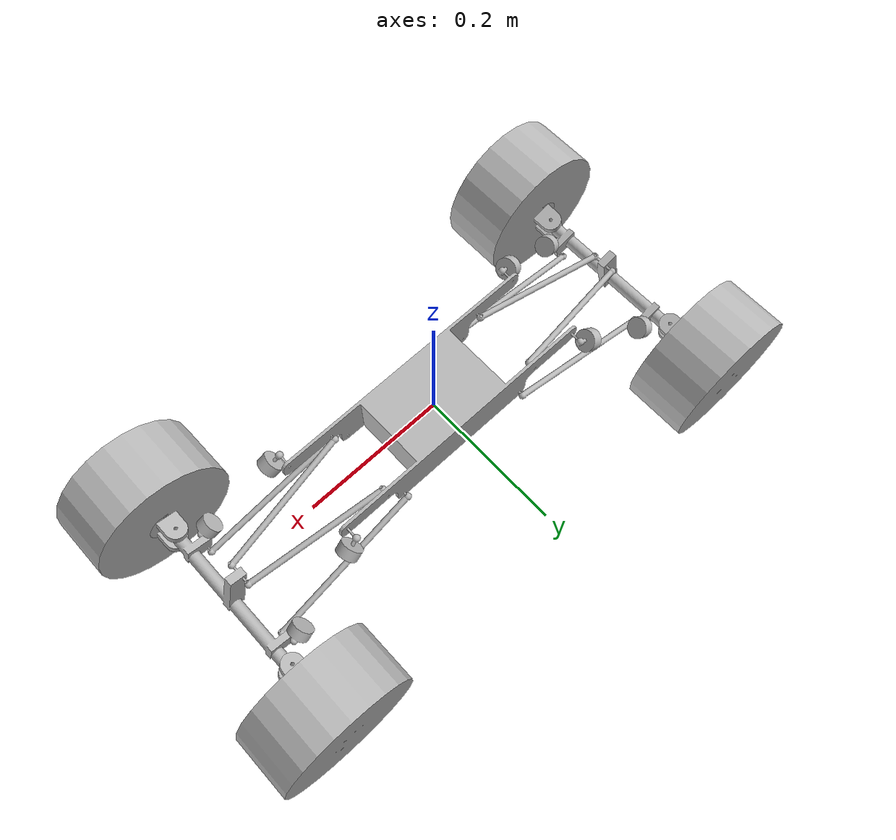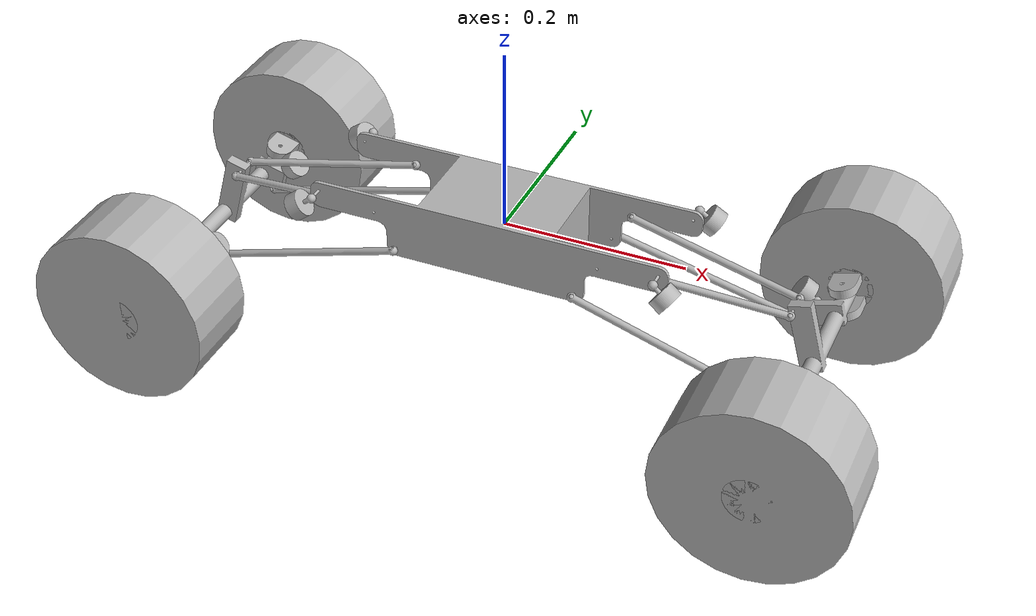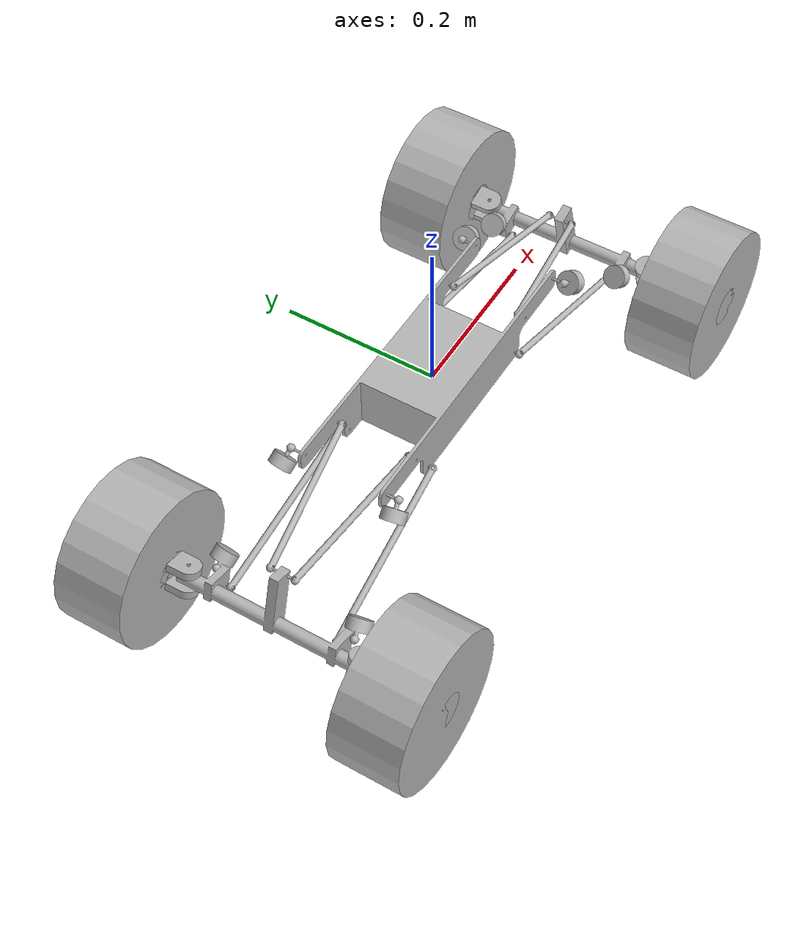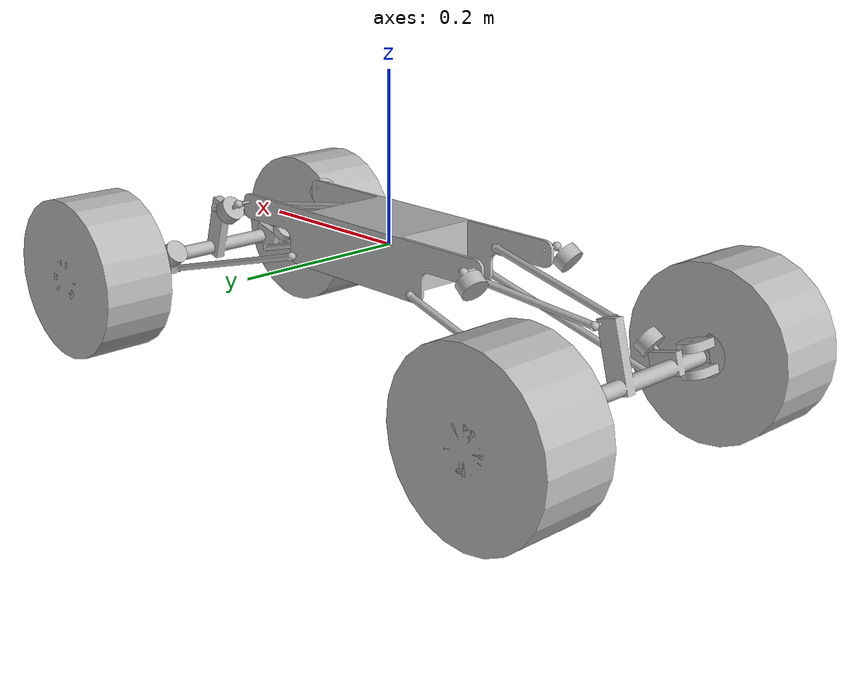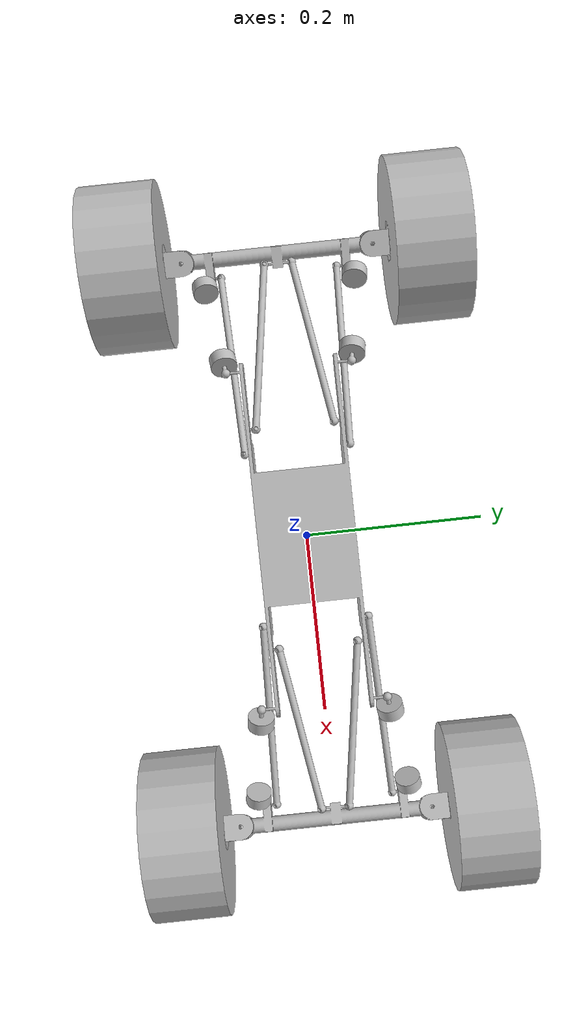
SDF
<?xml version="1.0" ?>
<sdf version='1.6'>
  <world name='sim_world'>
    <model name='clifford'>
      <link name='body'>
        <pose frame=''>0 0 0 0 -0 0</pose>
        <inertial>
          <pose frame=''>0 -0 0 0 -0 0</pose>
          <mass>1.20456</mass>
          <inertia>
            <ixx>0.00136339</ixx>
            <ixy>-1.92982e-16</ixy>
            <ixz>-5.63833e-15</ixz>
            <iyy>0.0039261</iyy>
            <iyz>3.35564e-17</iyz>
            <izz>0.00436726</izz>
          </inertia>
        </inertial>
        <visual name='body_visual'>
          <pose frame=''>0 0 0 0 -0 0</pose>
          <geometry>
            <mesh>
              <scale>1 1 1</scale>
              <uri>model://meshes/body.STL</uri>
            </mesh>
          </geometry>
        </visual>
        <collision name='body_visual'>
          <pose frame=''>0 0 0 0 -0 0</pose>
          <geometry>
            <mesh>
              <scale>1 1 1</scale>
              <uri>model://meshes/body.STL</uri>
            </mesh>
          </geometry>
        </collision>
      </link>
      <link name='bro'>
        <pose frame=''>-0.101 -0.0615 -0.024 1.28235 0.269455 -3.09986</pose>
        <inertial>
          <pose frame=''>0.115 -0 -0 0 -0 0</pose>
          <mass>0.0117925</mass>
          <inertia>
            <ixx>9.65368e-08</ixx>
            <ixy>4.10647e-12</ixy>
            <ixz>1.05145e-19</ixz>
            <iyy>5.42742e-05</iyy>
            <iyz>2.71051e-20</iyz>
            <izz>5.42722e-05</izz>
          </inertia>
        </inertial>
        <visual name='bro_visual'>
          <pose frame=''>0 0 0 0 -0 0</pose>
          <geometry>
            <mesh>
              <scale>1 1 1</scale>
              <uri>model://meshes/linkageOut.STL</uri>
            </mesh>
          </geometry>
        </visual>
      </link>
      <link name='backAxle'>
        <pose frame=''>-0.322508 -0.07075 -0.085227 0.267288 -0 1.5708</pose>
        <inertial>
          <pose frame=''>0.07075 0.019868 0.013586 0 -0 0</pose>
          <mass>0.0969889</mass>
          <inertia>
            <ixx>3.59997e-05</ixx>
            <ixy>3.0828e-11</ixy>
            <ixz>-2.58754e-11</ixz>
            <iyy>0.00045052</iyy>
            <iyz>9.38007e-07</iyz>
            <izz>0.00042565</izz>
          </inertia>
        </inertial>
        <visual name='backAxle_visual'>
          <pose frame=''>0 0 0 0 -0 0</pose>
          <geometry>
            <mesh>
              <scale>1 1 1</scale>
              <uri>model://meshes/axleRear.STL</uri>
            </mesh>
          </geometry>
        </visual>
      </link>
      <link name='bli'>
        <pose frame=''>-0.315871 0.016 -0.013949 -0.604825 -0.143825 0.148221</pose>
        <inertial>
          <pose frame=''>0.0975 0 -0 0 -0 0</pose>
          <mass>0.0200332</mass>
          <inertia>
            <ixx>8.24621e-08</ixx>
            <ixy>2.3168e-12</ixy>
            <ixz>1.29699e-19</ixz>
            <iyy>3.34708e-05</iyy>
            <iyz>-3.30343e-20</iyz>
            <izz>3.34688e-05</izz>
          </inertia>
        </inertial>
        <visual name='bli_visual'>
          <pose frame=''>0 0 0 0 -0 0</pose>
          <geometry>
            <mesh>
              <scale>1 1 1</scale>
              <uri>model://meshes/linkageIn.STL</uri>
            </mesh>
          </geometry>
        </visual>
      </link>
      <link name='blo'>
        <pose frame=''>-0.322508 0.07075 -0.085227 2.55732 -0.269455 -0.041735</pose>
        <inertial>
          <pose frame=''>0.115 0 0 0 -0 0</pose>
          <mass>0.0117925</mass>
          <inertia>
            <ixx>9.65368e-08</ixx>
            <ixy>-4.10647e-12</ixy>
            <ixz>2.98276e-19</ixz>
            <iyy>5.42742e-05</iyy>
            <iyz>-6.94567e-20</iyz>
            <izz>5.42722e-05</izz>
          </inertia>
        </inertial>
        <visual name='blo_visual'>
          <pose frame=''>0 0 0 0 -0 0</pose>
          <geometry>
            <mesh>
              <scale>1 1 1</scale>
              <uri>model://meshes/linkageOut.STL</uri>
            </mesh>
          </geometry>
        </visual>
      </link>
      <link name='blslower'>
        <pose frame=''>-0.318186 0.092 -0.068785 -0.568218 -0.618473 -0.161762</pose>
        <inertial>
          <pose frame=''>0.016589 -0 0 0 -0 0</pose>
          <mass>0.0112311</mass>
          <inertia>
            <ixx>1.19839e-06</ixx>
            <ixy>-7.365e-14</ixy>
            <ixz>-1.39475e-14</ixz>
            <iyy>9.62721e-07</iyy>
            <iyz>1.3652e-15</iyz>
            <izz>9.62722e-07</izz>
          </inertia>
        </inertial>
        <visual name='blslower_visual'>
          <pose frame=''>0 0 0 0 -0 0</pose>
          <geometry>
            <mesh>
              <scale>1 1 1</scale>
              <uri>model://meshes/springPart.STL</uri>
            </mesh>
          </geometry>
        </visual>
      </link>
      <link name='blsupper'>
        <pose frame=''>-0.1895 0.071 0.024 2.41118 0.618473 2.97983</pose>
        <inertial>
          <pose frame=''>0.016589 -0 0 0 -0 0</pose>
          <mass>0.0112311</mass>
          <inertia>
            <ixx>1.19839e-06</ixx>
            <ixy>-4.34583e-14</ixy>
            <ixz>-1.88149e-14</ixz>
            <iyy>9.62721e-07</iyy>
            <iyz>1.08668e-15</iyz>
            <izz>9.62722e-07</izz>
          </inertia>
        </inertial>
        <visual name='blsupper_visual'>
          <pose frame=''>0 0 0 0 -0 0</pose>
          <geometry>
            <mesh>
              <scale>1 1 1</scale>
              <uri>model://meshes/springPart.STL</uri>
            </mesh>
          </geometry>
        </visual>
      </link>
      <link name='blwheel'>
        <pose frame=''>-0.342683 0.115 -0.074 -2.8743 -0 1.5708</pose>
        <inertial>
          <pose frame=''>0.00750009171 0 0 0 -0 0</pose>
          <mass>0.19539</mass>
          <inertia>
            <ixx>6.03364e-05</ixx>
            <ixy>3.16416e-20</ixy>
            <ixz>-2.02141e-21</ixz>
            <iyy>0.000215224</iyy>
            <iyz>6.77626e-21</iyz>
            <izz>0.000212705</izz>
          </inertia>
        </inertial>
        <visual name='blwheel_visual'>
          <pose frame=''>0 0 0 0 -0 0</pose>
          <geometry>
            <mesh>
              <scale>1 1 1</scale>
              <uri>model://meshes/wheelHub.STL</uri>
            </mesh>
          </geometry>
        </visual>
      </link>
      <link name='bri'>
        <pose frame=''>-0.315871 -0.016 -0.013949 1.44194 -0.143825 -0.148221</pose>
        <inertial>
          <pose frame=''>0.0975 0 0 0 -0 0</pose>
          <mass>0.0200332</mass>
          <inertia>
            <ixx>8.24621e-08</ixx>
            <ixy>-2.3168e-12</ixy>
            <ixz>-2.12659e-19</ixz>
            <iyy>3.34708e-05</iyy>
            <iyz>5.97158e-20</iyz>
            <izz>3.34688e-05</izz>
          </inertia>
        </inertial>
        <visual name='bri_visual'>
          <pose frame=''>0 0 0 0 -0 0</pose>
          <geometry>
            <mesh>
              <scale>1 1 1</scale>
              <uri>model://meshes/linkageIn.STL</uri>
            </mesh>
          </geometry>
        </visual>
      </link>
      <link name='brslower'>
        <pose frame=''>-0.318186 -0.092 -0.068785 -0.210766 -0.618473 0.161762</pose>
        <inertial>
          <pose frame=''>0.016589 0 0 0 -0 0</pose>
          <mass>0.0112311</mass>
          <inertia>
            <ixx>1.19839e-06</ixx>
            <ixy>6.27133e-15</ixy>
            <ixz>-2.09143e-14</ixz>
            <iyy>9.62721e-07</iyy>
            <iyz>-1.74313e-16</iyz>
            <izz>9.62722e-07</izz>
          </inertia>
        </inertial>
        <visual name='brslower_visual'>
          <pose frame=''>0 0 0 0 -0 0</pose>
          <geometry>
            <mesh>
              <scale>1 1 1</scale>
              <uri>model://meshes/springPart.STL</uri>
            </mesh>
          </geometry>
        </visual>
      </link>
      <link name='brsupper'>
        <pose frame=''>-0.1895 -0.071 0.024 2.05373 0.618473 -2.97983</pose>
        <inertial>
          <pose frame=''>0.016589 -0 0 0 -0 0</pose>
          <mass>0.0112311</mass>
          <inertia>
            <ixx>1.19839e-06</ixx>
            <ixy>-9.65399e-14</ixy>
            <ixz>-4.33935e-15</ixz>
            <iyy>9.62721e-07</iyy>
            <iyz>5.56748e-16</iyz>
            <izz>9.62722e-07</izz>
          </inertia>
        </inertial>
        <visual name='brsupper_visual'>
          <pose frame=''>0 0 0 0 -0 0</pose>
          <geometry>
            <mesh>
              <scale>1 1 1</scale>
              <uri>model://meshes/springPart.STL</uri>
            </mesh>
          </geometry>
        </visual>
      </link>
      <link name='brwheel'>
        <pose frame=''>-0.342683 -0.115 -0.074 2.8743 0 -1.5708</pose>
        <inertial>
          <pose frame=''>0.00750009171 -0 0 0 -0 0</pose>
          <mass>0.19539</mass>
          <inertia>
            <ixx>6.03364e-05</ixx>
            <ixy>8.21409e-21</ixy>
            <ixz>-4.18157e-21</ixz>
            <iyy>0.000215224</iyy>
            <iyz>1.35525e-20</iyz>
            <izz>0.000212705</izz>
          </inertia>
        </inertial>
        <visual name='brwheel_visual'>
          <pose frame=''>0 0 0 0 -0 0</pose>
          <geometry>
            <mesh>
              <scale>1 1 1</scale>
              <uri>model://meshes/wheelHub.STL</uri>
            </mesh>
          </geometry>
        </visual>
      </link>
      <link name='bltire'>
        <pose frame=''>-0.342683 0.135 -0.074 -2.31924 -0 1.5708</pose>
        <inertial>
          <pose frame=''>0.045 0 -0 0 -0 0</pose>
          <mass>2.65072</mass>
          <inertia>
            <ixx>0.0140819</ixx>
            <ixy>-2.23921e-19</ixy>
            <ixz>-3.27444e-19</ixz>
            <iyy>0.00883021</iyy>
            <iyz>2.1684e-18</iyz>
            <izz>0.00883021</izz>
          </inertia>
        </inertial>
        <collision name='bltire_collision'>
          <pose frame=''>0.045 0 0 0 1.57079632679 0</pose>
          <geometry>
            <cylinder>
              <radius>0.1 0 0</radius>
              <length>0.09 0 0</length>
            </cylinder>
          </geometry>
        </collision>
        <visual name='bltire_visual'>
          <pose frame=''>0.045 0 0 0 1.57079632679 0</pose>
          <geometry>
            <cylinder>
              <radius>0.1 0 0</radius>
              <length>0.09 0 0</length>
            </cylinder>
          </geometry>
        </visual>
      </link>
      <link name='brtire'>
        <pose frame=''>-0.342683 -0.225 -0.074 -2.87457 -0 1.5708</pose>
        <inertial>
          <pose frame=''>0.045 0 0 0 -0 0</pose>
          <mass>2.65072</mass>
          <inertia>
            <ixx>0.0140819</ixx>
            <ixy>2.01201e-19</ixy>
            <ixz>-7.89159e-20</ixz>
            <iyy>0.00883021</iyy>
            <iyz>-4.33681e-19</iyz>
            <izz>0.00883021</izz>
          </inertia>
        </inertial>
        <collision name='brtire_collision'>
          <pose frame=''>0.045 0 0 0 1.57079632679 0</pose>
          <geometry>
            <cylinder>
              <radius>0.1 0 0</radius>
              <length>0.09 0 0</length>
            </cylinder>
          </geometry>
        </collision>
        <visual name='brtire_visual'>
          <pose frame=''>0.045 0 0 0 1.57079632679 0</pose>
          <geometry>
            <cylinder>
              <radius>0.1 0 0</radius>
              <length>0.09 0 0</length>
            </cylinder>
          </geometry>
        </visual>
      </link>
      <link name='fro'>
        <pose frame=''>0.101 -0.0615 -0.024 2.1962 0.26945 -0.041735</pose>
        <inertial>
          <pose frame=''>0.115 -0 0 0 -0 0</pose>
          <mass>0.0117925</mass>
          <inertia>
            <ixx>9.65368e-08</ixx>
            <ixy>-4.10647e-12</ixy>
            <ixz>-5.41898e-20</ixz>
            <iyy>5.42742e-05</iyy>
            <iyz>-2.03288e-20</iyz>
            <izz>5.42722e-05</izz>
          </inertia>
        </inertial>
        <visual name='fro_visual'>
          <pose frame=''>0 0 0 0 -0 0</pose>
          <geometry>
            <mesh>
              <scale>1 1 1</scale>
              <uri>model://meshes/linkageOut.STL</uri>
            </mesh>
          </geometry>
        </visual>
      </link>
      <link name='frontAxle'>
        <pose frame=''>0.322508 -0.07075 -0.085226 -0.267269 -2.4e-05 1.57078</pose>
        <inertial>
          <pose frame=''>0.07075 -0.019868 0.013586 0 -0 0</pose>
          <mass>0.0969889</mass>
          <inertia>
            <ixx>3.59997e-05</ixx>
            <ixy>3.0828e-11</ixy>
            <ixz>2.58754e-11</ixz>
            <iyy>0.00045052</iyy>
            <iyz>-9.38007e-07</iyz>
            <izz>0.00042565</izz>
          </inertia>
        </inertial>
        <visual name='frontAxle_visual'>
          <pose frame=''>0 0 0 0 -0 0</pose>
          <geometry>
            <mesh>
              <scale>1 1 1</scale>
              <uri>model://meshes/axleFront.STL</uri>
            </mesh>
          </geometry>
        </visual>
      </link>
      <link name='fli'>
        <pose frame=''>0.315873 0.015998 -0.013946 0.904649 -0.143848 2.99336</pose>
        <inertial>
          <pose frame=''>0.0975 0 -0 0 -0 0</pose>
          <mass>0.0200332</mass>
          <inertia>
            <ixx>8.24621e-08</ixx>
            <ixy>2.3168e-12</ixy>
            <ixz>-1.57474e-19</ixz>
            <iyy>3.34708e-05</iyy>
            <iyz>-1.18585e-20</iyz>
            <izz>3.34688e-05</izz>
          </inertia>
        </inertial>
        <visual name='fli_visual'>
          <pose frame=''>0 0 0 0 -0 0</pose>
          <geometry>
            <mesh>
              <scale>1 1 1</scale>
              <uri>model://meshes/linkageIn.STL</uri>
            </mesh>
          </geometry>
        </visual>
      </link>
      <link name='flo'>
        <pose frame=''>0.32251 0.07075 -0.085223 0.756048 -0.269473 -3.09986</pose>
        <inertial>
          <pose frame=''>0.115 -0 -0 0 -0 0</pose>
          <mass>0.0117925</mass>
          <inertia>
            <ixx>9.65368e-08</ixx>
            <ixy>4.10647e-12</ixy>
            <ixz>-1.48398e-19</ixz>
            <iyy>5.42742e-05</iyy>
            <iyz>5.75982e-20</iyz>
            <izz>5.42722e-05</izz>
          </inertia>
        </inertial>
        <visual name='flo_visual'>
          <pose frame=''>0 0 0 0 -0 0</pose>
          <geometry>
            <mesh>
              <scale>1 1 1</scale>
              <uri>model://meshes/linkageOut.STL</uri>
            </mesh>
          </geometry>
        </visual>
      </link>
      <link name='flslower'>
        <pose frame=''>0.318189 0.092 -0.06878 -1.43248 -0.618488 -2.97982</pose>
        <inertial>
          <pose frame=''>0.016589 -0 0 0 -0 0</pose>
          <mass>0.0112311</mass>
          <inertia>
            <ixx>1.19839e-06</ixx>
            <ixy>-9.03931e-14</ixy>
            <ixz>-8.40562e-15</ixz>
            <iyy>9.62721e-07</iyy>
            <iyz>1.00979e-15</iyz>
            <izz>9.62722e-07</izz>
          </inertia>
        </inertial>
        <visual name='flslower_visual'>
          <pose frame=''>0 0 0 0 -0 0</pose>
          <geometry>
            <mesh>
              <scale>1 1 1</scale>
              <uri>model://meshes/springPart.STL</uri>
            </mesh>
          </geometry>
        </visual>
      </link>
      <link name='flsupper'>
        <pose frame=''>0.189504 0.070999 0.024007 2.4484 0.618488 0.161768</pose>
        <inertial>
          <pose frame=''>0.016589 -0 0 0 -0 0</pose>
          <mass>0.0112311</mass>
          <inertia>
            <ixx>1.19839e-06</ixx>
            <ixy>-8.12639e-14</ixy>
            <ixz>-1.18884e-14</ixz>
            <iyy>9.62721e-07</iyy>
            <iyz>1.28395e-15</iyz>
            <izz>9.62722e-07</izz>
          </inertia>
        </inertial>
        <visual name='flsupper_visual'>
          <pose frame=''>0 0 0 0 -0 0</pose>
          <geometry>
            <mesh>
              <scale>1 1 1</scale>
              <uri>model://meshes/springPart.STL</uri>
            </mesh>
          </geometry>
        </visual>
      </link>
      <link name='flwheel'>
        <pose frame=''>0.342686 0.114999 -0.073995 2.87432 -2.4e-05 1.57078</pose>
        <inertial>
          <pose frame=''>0.00750009171 0 0 0 -0 0</pose>
          <mass>0.19539</mass>
          <inertia>
            <ixx>6.03364e-05</ixx>
            <ixy>7.91021e-21</ixy>
            <ixz>4.51343e-21</ixz>
            <iyy>0.000215224</iyy>
            <iyz>2.37169e-20</iyz>
            <izz>0.000212705</izz>
          </inertia>
        </inertial>
        <visual name='flwheel_visual'>
          <pose frame=''>0 0 0 0 -0 0</pose>
          <geometry>
            <mesh>
              <scale>1 1 1</scale>
              <uri>model://meshes/wheelHub.STL</uri>
            </mesh>
          </geometry>
        </visual>
      </link>
      <link name='fri'>
        <pose frame=''>0.315873 -0.016002 -0.013947 0.861564 -0.143841 -2.99338</pose>
        <inertial>
          <pose frame=''>0.0975 0 -0 0 -0 0</pose>
          <mass>0.0200332</mass>
          <inertia>
            <ixx>8.24621e-08</ixx>
            <ixy>2.3168e-12</ixy>
            <ixz>6.46458e-20</ixz>
            <iyy>3.34708e-05</iyy>
            <iyz>-2.20229e-20</iyz>
            <izz>3.34688e-05</izz>
          </inertia>
        </inertial>
        <visual name='fri_visual'>
          <pose frame=''>0 0 0 0 -0 0</pose>
          <geometry>
            <mesh>
              <scale>1 1 1</scale>
              <uri>model://meshes/linkageIn.STL</uri>
            </mesh>
          </geometry>
        </visual>
      </link>
      <link name='frslower'>
        <pose frame=''>0.318186 -0.092 -0.068784 -0.708805 -0.618496 2.97983</pose>
        <inertial>
          <pose frame=''>0.016589 -0 0 0 -0 0</pose>
          <mass>0.0112311</mass>
          <inertia>
            <ixx>1.19839e-06</ixx>
            <ixy>-8.21246e-14</ixy>
            <ixz>-1.16186e-14</ixz>
            <iyy>9.62721e-07</iyy>
            <iyz>1.2681e-15</iyz>
            <izz>9.62722e-07</izz>
          </inertia>
        </inertial>
        <visual name='frslower_visual'>
          <pose frame=''>0 0 0 0 -0 0</pose>
          <geometry>
            <mesh>
              <scale>1 1 1</scale>
              <uri>model://meshes/springPart.STL</uri>
            </mesh>
          </geometry>
        </visual>
      </link>
      <link name='frsupper'>
        <pose frame=''>0.189502 -0.071001 0.024004 1.72472 0.618496 -0.161761</pose>
        <inertial>
          <pose frame=''>0.016589 -0 0 0 -0 0</pose>
          <mass>0.0112311</mass>
          <inertia>
            <ixx>1.19839e-06</ixx>
            <ixy>-8.97667e-14</ixy>
            <ixz>-8.70313e-15</ixz>
            <iyy>9.62721e-07</iyy>
            <iyz>1.03829e-15</iyz>
            <izz>9.62722e-07</izz>
          </inertia>
        </inertial>
        <visual name='frsupper_visual'>
          <pose frame=''>0 0 0 0 -0 0</pose>
          <geometry>
            <mesh>
              <scale>1 1 1</scale>
              <uri>model://meshes/springPart.STL</uri>
            </mesh>
          </geometry>
        </visual>
      </link>
      <link name='frwheel'>
        <pose frame=''>0.342683 -0.115001 -0.074 0.267269 2.4e-05 -1.57081</pose>
        <inertial>
          <pose frame=''>0.00750009171 0 -0 0 -0 0</pose>
          <mass>0.19539</mass>
          <inertia>
            <ixx>6.03364e-05</ixx>
            <ixy>-7.33769e-21</ixy>
            <ixz>2.87017e-21</ixz>
            <iyy>0.000215224</iyy>
            <iyz>-3.38813e-21</iyz>
            <izz>0.000212705</izz>
          </inertia>
        </inertial>
        <visual name='frwheel_visual'>
          <pose frame=''>0 0 0 0 -0 0</pose>
          <geometry>
            <mesh>
              <scale>1 1 1</scale>
              <uri>model://meshes/wheelHub.STL</uri>
            </mesh>
          </geometry>
        </visual>
      </link>
      <link name='fltire'>
        <pose frame=''>0.342686 0.134999 -0.073994 -1.4358 -2.4e-05 1.57078</pose>
        <inertial>
          <pose frame=''>0.045 0 0 0 -0 0</pose>
          <mass>2.65072</mass>
          <inertia>
            <ixx>0.0140819</ixx>
            <ixy>-1.63996e-19</ixy>
            <ixz>-5.51633e-19</ixz>
            <iyy>0.00883021</iyy>
            <iyz>-1.0842e-19</iyz>
            <izz>0.00883021</izz>
          </inertia>
        </inertial>
        <collision name='fltire_collision'>
          <pose frame=''>0.045 0 0 0 1.57079632679 0</pose>
          <geometry>
            <cylinder>
              <radius>0.1 0 0</radius>
              <length>0.09 0 0</length>
            </cylinder>
          </geometry>
        </collision>
        <visual name='fltire_visual'>
          <pose frame=''>0.045 0 0 0 1.57079632679 0</pose>
          <geometry>
            <cylinder>
              <radius>0.1 0 0</radius>
              <length>0.09 0 0</length>
            </cylinder>
          </geometry>
        </visual>
      </link>
      <link name='frtire'>
        <pose frame=''>0.342682 -0.225001 -0.074003 -1.07467 -2.4e-05 1.57078</pose>
        <inertial>
          <pose frame=''>0.045 -0 0 0 -0 0</pose>
          <mass>2.65072</mass>
          <inertia>
            <ixx>0.0140819</ixx>
            <ixy>6.05221e-19</ixy>
            <ixz>2.56811e-19</ixz>
            <iyy>0.00883021</iyy>
            <iyz>-8.67362e-19</iyz>
            <izz>0.00883021</izz>
          </inertia>
        </inertial>
        <collision name='frtire_collision'>
          <pose frame=''>0.045 0 0 0 1.57079632679 0</pose>
          <geometry>
            <cylinder>
              <radius>0.1 0 0</radius>
              <length>0.09 0 0</length>
            </cylinder>
          </geometry>
        </collision>
        <visual name='frtire_visual'>
          <pose frame=''>0.045 0 0 0 1.57079632679 0</pose>
          <geometry>
            <cylinder>
              <radius>0.1 0 0</radius>
              <length>0.09 0 0</length>
            </cylinder>
          </geometry>
        </visual>
      </link>-->

      <!-- Joints-->
      <joint name='body2bro' type='spherical'>
        <child>bro</child>
        <parent>body</parent>
        <axis>
          <xyz>1 0 0</xyz>
        </axis>
      </joint>
      <joint name='bro2axle' type='spherical'>
        <child>backAxle</child>
        <parent>bro</parent>
        <axis>
          <xyz>1 0 0</xyz>
        </axis>
      </joint>
      <joint name='axle2bli' type='spherical'>
        <child>bli</child>
        <parent>backAxle</parent>
        <axis>
          <xyz>1 0 0</xyz>
        </axis>
      </joint>

      <joint name='axle2blo' type='spherical'>
        <child>blo</child>
        <parent>backAxle</parent>
        <axis>
          <xyz>1 0 0</xyz>
        </axis>
      </joint>
      <joint name='axle2blslower' type='spherical'>
        <child>blslower</child>
        <parent>backAxle</parent>
        <axis>
          <xyz>1 0 0</xyz>
        </axis>
      </joint>
      <joint name='axle2blwheel' type='revolute'>
        <child>blwheel</child>
        <parent>backAxle</parent>
        <axis>
          <xyz>0.264117 0 0.964491</xyz>
          <limit>
            <lower>0</lower>
            <upper>0</upper>
            <effort>0</effort>
            <velocity>0</velocity>
          </limit>
          <dynamics>
            <spring_reference>0</spring_reference>
            <spring_stiffness>0</spring_stiffness>
            <damping>10</damping>
          </dynamics>
          <use_parent_model_frame>1</use_parent_model_frame>
        </axis>
      </joint>
      <joint name='blwheel2tire' type='continuous'>
        <child>bltire</child>
        <parent>blwheel</parent>
        <axis>
          <xyz>1 0 0</xyz>
        </axis>
      </joint>
      <joint name='axle2bri' type='spherical'>
        <child>bri</child>
        <parent>backAxle</parent>
        <axis>
          <xyz>1 0 0</xyz>
        </axis>
      </joint>
      <joint name='axle2brslower' type='spherical'>
        <child>brslower</child>
        <parent>backAxle</parent>
        <axis>
          <xyz>1 0 0</xyz>
        </axis>
      </joint>
      <joint name='axle2brwheel' type='revolute'>
        <child>brwheel</child>
        <parent>backAxle</parent>
        <axis>
          <xyz>0.264117 0 0.964491</xyz>
          <limit>
            <lower>0</lower>
            <upper>0</upper>
            <effort>0</effort>
            <velocity>0</velocity>
          </limit>
          <dynamics>
            <spring_reference>0</spring_reference>
            <spring_stiffness>0</spring_stiffness>
            <damping>10</damping>
          </dynamics>
          <use_parent_model_frame>1</use_parent_model_frame>
        </axis>
      </joint>
      <joint name='brwheel2tire' type='continuous'>
        <child>brtire</child>
        <parent>brwheel</parent>
        <axis>
          <xyz>1 0 0</xyz>
        </axis>
      </joint>
      <joint name='body2fro' type='spherical'>
        <child>fro</child>
        <parent>body</parent>
        <axis>
          <xyz>1 0 0</xyz>
        </axis>
      </joint>
      <joint name='fro2Axle' type='spherical'>
        <child>frontAxle</child>
        <parent>fro</parent>
        <axis>
          <xyz>1 0 0</xyz>
        </axis>
      </joint>
      <joint name='axle2fli' type='spherical'>
        <child>fli</child>
        <parent>frontAxle</parent>
        <axis>
          <xyz>1 0 0</xyz>
        </axis>
      </joint>
      <joint name='axle2flo' type='spherical'>
        <child>flo</child>
        <parent>frontAxle</parent>
        <axis>
          <xyz>1 0 0</xyz>
        </axis>
      </joint>
      <joint name='axle2flslower' type='spherical'>
        <child>flslower</child>
        <parent>frontAxle</parent>
        <axis>
          <xyz>1 0 0</xyz>
        </axis>
      </joint>
      <joint name='axle2flwheel' type='revolute'>
        <child>flwheel</child>
        <parent>frontAxle</parent>
        <axis>
          <xyz>-0.264098 -2e-05 0.964496</xyz>
          <limit>
            <lower>-0.5</lower>
            <upper>0.5</upper>
          </limit>
          <dynamics>
            <spring_reference>0</spring_reference>
            <spring_stiffness>0</spring_stiffness>
            <damping>10</damping>
          </dynamics>
          <use_parent_model_frame>1</use_parent_model_frame>
        </axis>
      </joint>
      <joint name='flwheel2tire' type='continuous'>
        <child>fltire</child>
        <parent>flwheel</parent>
        <axis>
          <xyz>1 0 0</xyz>
        </axis>
      </joint>
      <joint name='axle2fri' type='spherical'>
        <child>fri</child>
        <parent>frontAxle</parent>
        <axis>
          <xyz>1 0 0</xyz>
        </axis>
      </joint>
      <joint name='axle2frslower' type='spherical'>
        <child>frslower</child>
        <parent>frontAxle</parent>
        <axis>
          <xyz>1 0 0</xyz>
        </axis>
      </joint>
      <joint name='axle2frwheel' type='revolute'>
        <child>frwheel</child>
        <parent>frontAxle</parent>
        <axis>
          <xyz>0.264098 2e-05 -0.964496</xyz>
          <limit>
            <lower>-0.5</lower>
            <upper>0.5</upper>
          </limit>
          <dynamics>
            <spring_reference>0</spring_reference>
            <spring_stiffness>0</spring_stiffness>
            <damping>10</damping>
          </dynamics>
          <use_parent_model_frame>1</use_parent_model_frame>
        </axis>
      </joint>
      <joint name='frwheel2tire' type='continuous'>
        <child>frtire</child>
        <parent>frwheel</parent>
        <axis>
          <xyz>1 0 0</xyz>
        </axis>
      </joint>

      <!-- Suspension Componenets -->
      <joint name='brslower2upper' type='prismatic'>
        <child>brsupper</child>
        <parent>brslower</parent>
        <axis>
          <xyz>1 0 0</xyz>
          <limit>
            <lower>-0.00500</lower>
            <upper>0.0075000</upper>
            <effort>-1</effort>
            <velocity>-1</velocity>
          </limit>
          <dynamics>
            <spring_reference>0</spring_reference>
            <spring_stiffness>0</spring_stiffness>
            <damping>0</damping>
          </dynamics>
        </axis>
      </joint>
      <joint name='blslower2upper' type='prismatic'>
        <child>blsupper</child>
        <parent>blslower</parent>
        <axis>
          <xyz>1 0 0</xyz>
          <limit>
            <lower>-0.00500</lower>
            <upper>0.0075000</upper>
            <effort>-1</effort>
            <velocity>-1</velocity>
          </limit>
          <dynamics>
            <spring_reference>0</spring_reference>
            <spring_stiffness>0</spring_stiffness>
            <damping>0</damping>
          </dynamics>
        </axis>
      </joint>
      <joint name='frslower2upper' type='prismatic'>
        <child>frsupper</child>
        <parent>frslower</parent>
        <axis>
          <xyz>1 0 0</xyz>
          <limit>
            <lower>-0.00500</lower>
            <upper>0.0075000</upper>
            <effort>-1</effort>
            <velocity>-1</velocity>
          </limit>
          <dynamics>
            <spring_reference>0</spring_reference>
            <spring_stiffness>0</spring_stiffness>
            <damping>0</damping>
          </dynamics>
        </axis>
      </joint>
      <joint name='flslower2upper' type='prismatic'>
        <child>flsupper</child>
        <parent>flslower</parent>
        <axis>
          <xyz>1 0 0</xyz>
          <limit>
            <lower>-0.00500</lower>
            <upper>0.0075000</upper>
            <effort>-1</effort>
            <velocity>-1</velocity>
          </limit>
          <dynamics>
            <spring_reference>0</spring_reference>
            <spring_stiffness>0</spring_stiffness>
            <damping>0</damping>
          </dynamics>
        </axis>
      </joint>
    </model>
  </world>

</sdf>
